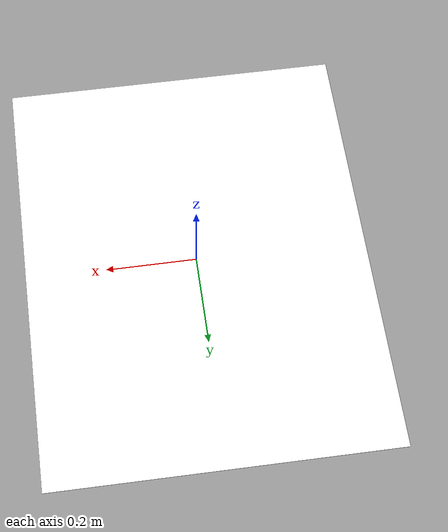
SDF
<?xml version="1.0"?>
<sdf version="1.9">
  <model name="embedded_aruco">
    <!-- Hazlo estático para que no caiga -->
    <static>true</static>

    <link name="marker_link">
      <!-- Visual: un plano con la textura de tu ArUco -->
      <visual name="marker_visual">
        <cast_shadows>false</cast_shadows>
        <geometry>
          <plane>
            <normal>0 0 1</normal>
            <!-- Ajusta aquí el tamaño en metros: 0.45×0.45 m -->
            <size>0.756 0.972</size>
          </plane>
        </geometry>
        <material>
          <ambient>1 1 1 1</ambient>
          <diffuse>1 1 1 1</diffuse>
          <pbr>
            <metal>
              <albedo_map>model://embedded_aruco/textures/chessboard1.png</albedo_map>
              <roughness>0.6</roughness>
              <metalness>0</metalness>
            </metal>
          </pbr>

        </material>
      </visual>

      <!-- Collision: idéntico al visual para detección de contacto -->
      <collision name="marker_collision">
        <geometry>
          <plane>
            <normal>0 0 1</normal>
            <size>0.25 0.25</size>
          </plane>
        </geometry>
      </collision>
    </link>
  </model>
</sdf>
